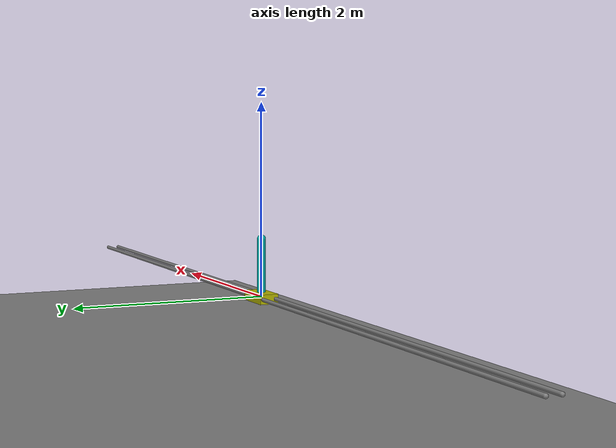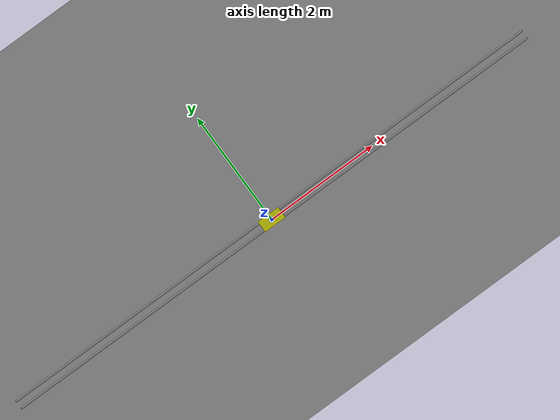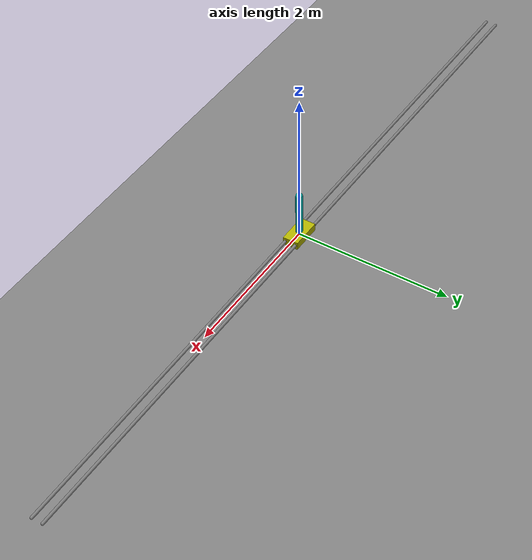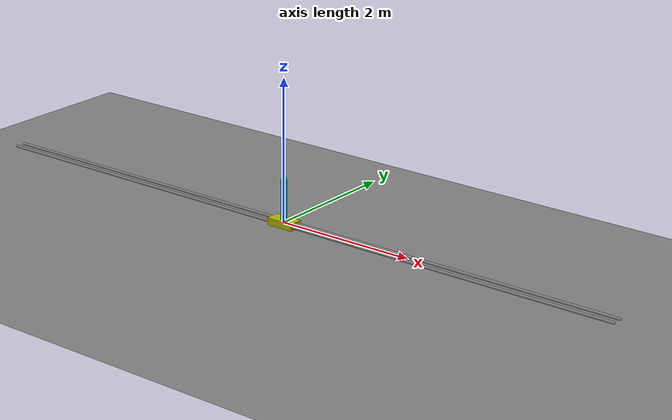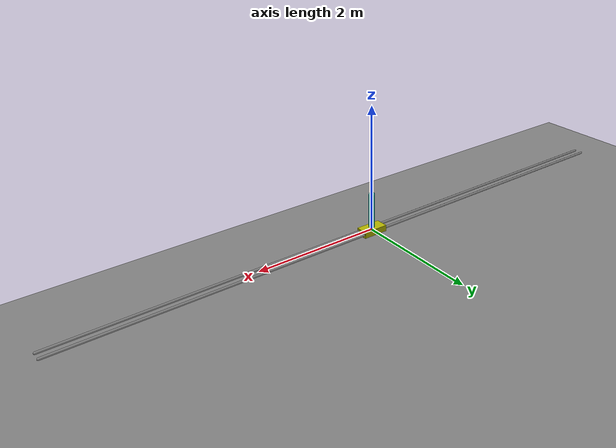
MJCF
<mujoco model='test_cartpole'>
  <compiler inertiafromgeom='true' coordinate='global'/>

  <custom>
    <numeric name="control_timestep" data="0.04" />
    <numeric name="three_numbers" data="1.0 2.0 3.0" />
  </custom>

  <option timestep='0.05'/>

  <default>
    <joint damping='0.1' solreflimit='.08 1'/>
    <geom contype='0' friction='0 0.1 0.1'/>
  </default>

  <worldbody>
    <camera name='fixed' pos='0 -2.5 0' quat='0.707 0.707 0 0'/>
    <geom name='floor' pos='0 0 -1' size='10 10 10' type='plane' />
    <geom name='rail1' type='capsule' pos='0 .07 0' quat='0.707 0 0.707 0'
          size='0.02 5' />
    <geom name='rail2' type='capsule' pos='0 -.07 0' quat='0.707 0 0.707 0'
          size='0.02 5' />
    <body name='cart' pos='0 0 0'>
      <camera name='cart' pos='0 -2.5 0' quat='0.707 0.707 0 0' />
      <joint name='slider' type='slide' limited='true' pos='0 0 0'
               axis='1 0 0' range='-3 3' />
      <geom name='cart' type='box' pos='0 0 0'
              size='0.2 0.1 0.05' mass = '1'  rgba='0.7 0.7 0 1' />
      <site name='cart sensor' type='box' pos='0 0 0'
              size='0.2 0.1 0.05' rgba='0.7 0.7 0 0' />
      <body name='pole' pos='0 0 0'>
        <camera name='pole'  pos='0 -2.5 0' quat='0.707 0.707 0 0' />
        <joint name='hinge' type='hinge' pos='0 0 0' axis='0 1 0'/>
        <geom name='cpole' type='capsule' fromto='0 0 0 0 0 0.6'
                size='0.045 10' rgba='0 0.7 0.7 1' mass = '0.1'/>
        <site type='sphere' size='.01' name='tip' pos='.001 0 .6'/>
      </body>
    </body>
  </worldbody>

  <actuator>
    <motor name='slide' joint='slider' gear='50' ctrllimited='true' ctrlrange='-500 500' />
  </actuator>

  <sensor>
    <accelerometer name="accelerometer" site="cart sensor"/>
    <touch name="collision" site="cart sensor"/>
  </sensor>

</mujoco>
